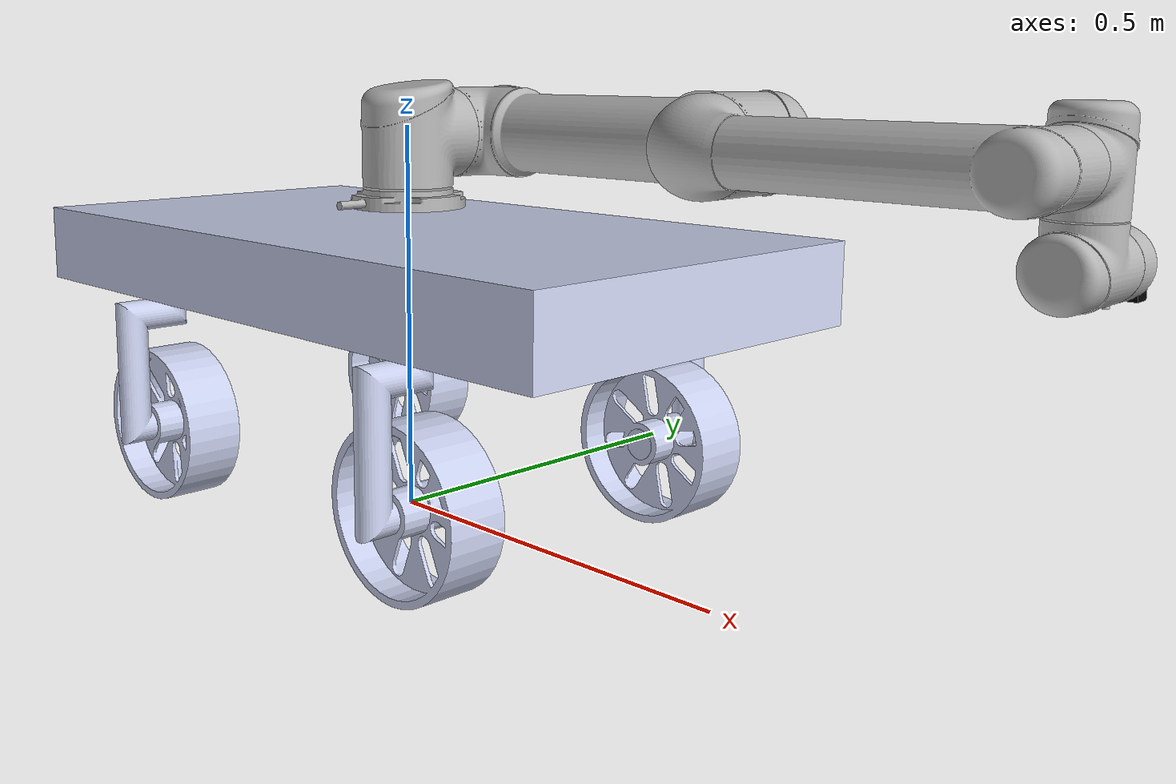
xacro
<?xml version="1.0"?>
<!-- Name your robot here -->
<robot name ="batbat" xmlns:xacro="http://wiki.ros.org/xacro">

<!-- Include your urdf files here -->
	<!-- Include Robot's urdf filepath -->
	<!-- Include Lidar's urdf filepath -->
	<xacro:include filename="$(find ur5_mobile_robot)/urdf/batbat.urdf"/>
	<xacro:include filename="$(find ur5_mobile_robot)/urdf/ur5_original_bat.urdf"/>

<!-- Add your gazebo sensors here -->

<!--  Gazebo plugin for control here is already added for you -->
	<gazebo>
		<plugin name="gazebo_ros_control" filename="libgazebo_ros_control.so">
			<robotNamespace>/batbat</robotNamespace>
			<robotSimType>gazebo_ros_control/DefaultRobotHWSim</robotSimType>
			<legacyModeNS>true</legacyModeNS>
		</plugin>
	</gazebo>

<!-- Create a joint between your robot and sensor -->
  <joint name="bat_bat_to_base" type="fixed">
    <origin rpy="0 0 0" xyz="0 0 0.400"/>
    <parent link="bat"/>
    <child link="base_link"/>
    <axis xyz="0 0 0"/>
  </joint>

</robot>

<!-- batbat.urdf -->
<robot
  name="batbat">
<link name="dummy_link">
  <pose>0 0 0 0 0 0</pose>
  </link>
  <joint name="dummy_joint" type="fixed">
    <parent
  	  link="dummy_link" />
    <child
      link="bat" />
    <origin
      xyz="0 0 0"
      rpy="0 0 0" />
    <axis
      xyz="0 0 0" />
  </joint>
  <link
    name="bat">
    <inertial>
      <origin
        xyz="-0.00486599634331379 -6.69841468503707E-18 0.324027623484238"
        rpy="0 0 0" />
      <mass
        value="50.7232439388311" />
      <inertia
        ixx="1.09055826124951"
        ixy="-3.35269528592248E-09"
        ixz="-3.3812326891182E-18"
        iyy="3.83396354011628"
        iyz="6.15284732885524E-18"
        izz="4.83272431412613" />
    </inertial>
    <visual>
      <origin
        xyz="0 0 0"
        rpy="0 0 0" />
      <geometry>
        <mesh
          filename="package://batbat/meshes/bat.STL" />
      </geometry>
      <material
        name="">
        <color
          rgba="0.792156862745098 0.819607843137255 0.933333333333333 1" />
      </material>
    </visual>
    <collision>
      <origin
        xyz="0 0 0"
        rpy="0 0 0" />
      <geometry>
        <mesh
          filename="package://batbat/meshes/bat.STL" />
      </geometry>
    </collision>
  </link>
  <link
    name="left_rear_wheel">
    <inertial>
      <origin
        xyz="1.66533453693773E-16 -8.32667268468867E-17 -0.0385"
        rpy="0 0 0" />
      <mass
        value="0.573286729576328" />
      <inertia
        ixx="0.00239463603464469"
        ixy="-7.27413290431382E-19"
        ixz="5.45949532263419E-19"
        iyy="0.0023946360346447"
        iyz="-2.06639055511541E-19"
        izz="0.00432457445366218" />
    </inertial>
    <visual>
      <origin
        xyz="0 0 0"
        rpy="0 0 0" />
      <geometry>
        <mesh
          filename="package://batbat/meshes/left_rear_wheel.STL" />
      </geometry>
      <material
        name="">
        <color
          rgba="0.792156862745098 0.819607843137255 0.933333333333333 1" />
      </material>
    </visual>
    <collision>
      <origin
        xyz="0 0 0"
        rpy="0 0 0" />
      <geometry>
        <mesh
          filename="package://batbat/meshes/left_rear_wheel.STL" />
      </geometry>
    </collision>
  </link>
  <joint
    name="left_rear_wheel_joint"
    type="continuous">
    <origin
      xyz="-0.254 0.166 0.1015"
      rpy="1.5707963267949 0 0" />
    <parent
      link="bat" />
    <child
      link="left_rear_wheel" />
    <axis
      xyz="0 0 -1" />
  </joint>
  <link
    name="right_rear_wheel">
    <inertial>
      <origin
        xyz="0 2.77555756156289E-17 -0.0385"
        rpy="0 0 0" />
      <mass
        value="0.573286729576328" />
      <inertia
        ixx="0.0023946360346447"
        ixy="1.64596017200982E-20"
        ixz="-2.10404479653222E-19"
        iyy="0.00239463603464469"
        iyz="4.09320571474671E-21"
        izz="0.00432457445366218" />
    </inertial>
    <visual>
      <origin
        xyz="0 0 0"
        rpy="0 0 0" />
      <geometry>
        <mesh
          filename="package://batbat/meshes/right_rear_wheel.STL" />
      </geometry>
      <material
        name="">
        <color
          rgba="0.792156862745098 0.819607843137255 0.933333333333333 1" />
      </material>
    </visual>
    <collision>
      <origin
        xyz="0 0 0"
        rpy="0 0 0" />
      <geometry>
        <mesh
          filename="package://batbat/meshes/right_rear_wheel.STL" />
      </geometry>
    </collision>
  </link>
  <joint
    name="right_rear_wheel_joint"
    type="continuous">
    <origin
      xyz="-0.254 -0.166 0.1015"
      rpy="-1.5707963267949 0 0" />
    <parent
      link="bat" />
    <child
      link="right_rear_wheel" />
    <axis
      xyz="0 0 1" />
  </joint>
  <link
    name="left_front_wheel">
    <inertial>
      <origin
        xyz="-5.68062037409334E-08 -0.0303204178096878 0.135651534929482"
        rpy="0 0 0" />
      <mass
        value="0.476285675559157" />
      <inertia
        ixx="0.00308338361390996"
        ixy="1.67634769313375E-09"
        ixz="-1.85092014262691E-09"
        iyy="0.00267628266798719"
        iyz="0.000153347484245119"
        izz="0.000502340348058678" />
    </inertial>
    <visual>
      <origin
        xyz="0 0 0"
        rpy="0 0 0" />
      <geometry>
        <mesh
          filename="package://batbat/meshes/left_front_wheel.STL" />
      </geometry>
      <material
        name="">
        <color
          rgba="0.792156862745098 0.819607843137255 0.933333333333333 1" />
      </material>
    </visual>
    <collision>
      <origin
        xyz="0 0 0"
        rpy="0 0 0" />
      <geometry>
        <mesh
          filename="package://batbat/meshes/left_front_wheel.STL" />
      </geometry>
    </collision>
  </link>
  <joint
    name="left_front_wheel_joint"
    type="revolute">
    <origin
      xyz="0.254 0.204 0.3265"
      rpy="3.14159265358979 0 0" />
    <parent
      link="bat" />
    <child
      link="left_front_wheel" />
    <axis
      xyz="0 0 1" />
    <limit
      lower="-3"
      upper="3"
      effort="10"
      velocity="100" />
  </joint>
  <link
    name="left_roll">
    <inertial>
      <origin
        xyz="-5.55111512312578E-17 0 -0.0385"
        rpy="0 0 0" />
      <mass
        value="0.573286729576329" />
      <inertia
        ixx="0.0023946360346447"
        ixy="2.38767751764967E-20"
        ixz="5.17032334026986E-19"
        iyy="0.0023946360346447"
        iyz="-2.92576549499483E-19"
        izz="0.00432457445366219" />
    </inertial>
    <visual>
      <origin
        xyz="0 0 0"
        rpy="0 0 0" />
      <geometry>
        <mesh
          filename="package://batbat/meshes/left_roll.STL" />
      </geometry>
      <material
        name="">
        <color
          rgba="0.792156862745098 0.819607843137255 0.933333333333333 1" />
      </material>
    </visual>
    <collision>
      <origin
        xyz="0 0 0"
        rpy="0 0 0" />
      <geometry>
        <mesh
          filename="package://batbat/meshes/left_roll.STL" />
      </geometry>
    </collision>
  </link>
  <joint
    name="left_roll_joint"
    type="continuous">
    <origin
      xyz="0 0.038 0.225"
      rpy="-1.5707963267949 0 0" />
    <parent
      link="left_front_wheel" />
    <child
      link="left_roll" />
    <axis
      xyz="0 0 -1" />
  </joint>
  <link
    name="right_front_wheel">
    <inertial>
      <origin
        xyz="5.68062039074668E-08 0.0303204178096884 0.135651534929482"
        rpy="0 0 0" />
      <mass
        value="0.476285675559157" />
      <inertia
        ixx="0.00308338361390996"
        ixy="1.67634769328428E-09"
        ixz="1.85092014321466E-09"
        iyy="0.0026762826679872"
        iyz="-0.000153347484245121"
        izz="0.000502340348058678" />
    </inertial>
    <visual>
      <origin
        xyz="0 0 0"
        rpy="0 0 0" />
      <geometry>
        <mesh
          filename="package://batbat/meshes/right_front_wheel.STL" />
      </geometry>
      <material
        name="">
        <color
          rgba="0.792156862745098 0.819607843137255 0.933333333333333 1" />
      </material>
    </visual>
    <collision>
      <origin
        xyz="0 0 0"
        rpy="0 0 0" />
      <geometry>
        <mesh
          filename="package://batbat/meshes/right_front_wheel.STL" />
      </geometry>
    </collision>
  </link>
  <joint
    name="right_front_wheel_joint"
    type="revolute">
    <origin
      xyz="0.254 -0.203999999999999 0.3265"
      rpy="3.14159265358979 0 0" />
    <parent
      link="bat" />
    <child
      link="right_front_wheel" />
    <axis
      xyz="0 0 1" />
    <limit
      lower="-3"
      upper="3"
      effort="10"
      velocity="100" />
  </joint>
  <link
    name="right_roll">
    <inertial>
      <origin
        xyz="0 -5.55111512312578E-17 -0.0384999999999997"
        rpy="0 0 0" />
      <mass
        value="0.573286729576328" />
      <inertia
        ixx="0.0023946360346447"
        ixy="1.07472378557313E-18"
        ixz="2.45111503531771E-19"
        iyy="0.00239463603464469"
        iyz="5.1029475068558E-20"
        izz="0.00432457445366218" />
    </inertial>
    <visual>
      <origin
        xyz="0 0 0"
        rpy="0 0 0" />
      <geometry>
        <mesh
          filename="package://batbat/meshes/right_roll.STL" />
      </geometry>
      <material
        name="">
        <color
          rgba="0.792156862745098 0.819607843137255 0.933333333333333 1" />
      </material>
    </visual>
    <collision>
      <origin
        xyz="0 0 0"
        rpy="0 0 0" />
      <geometry>
        <mesh
          filename="package://batbat/meshes/right_roll.STL" />
      </geometry>
    </collision>
  </link>
  <joint
    name="right_roll_joint"
    type="continuous">
    <origin
      xyz="0 -0.0379999999999993 0.225"
      rpy="-1.5707963267949 0 3.14159265358979" />
    <parent
      link="right_front_wheel" />
    <child
      link="right_roll" />
    <axis
      xyz="0 0 -1" />
  </joint>
<transmission name="rear_motor_left">
    <type>transmission_interface/SimpleTransmission</type>
    <joint name="left_rear_wheel_joint">
      <hardwareInterface>hardware_interface/VelocityJointInterface</hardwareInterface>
    </joint>
    <actuator name="rear_motor_left">
      <mechanicalReduction>100</mechanicalReduction>
      <hardwareInterface>hardware_interface/VelocityJointInterface</hardwareInterface>
    </actuator>
  </transmission>
  <transmission name="rear_motor_right">
    <type>transmission_interface/SimpleTransmission</type>
    <joint name="right_rear_wheel_joint">
      <hardwareInterface>hardware_interface/VelocityJointInterface</hardwareInterface>
    </joint>
    <actuator name="rear_motor_right">
      <mechanicalReduction>100</mechanicalReduction>
      <hardwareInterface>hardware_interface/VelocityJointInterface</hardwareInterface>
    </actuator>
  </transmission>
  <transmission name="front_motor_right">
    <type>transmission_interface/SimpleTransmission</type>
    <joint name="right_front_wheel_joint">
      <hardwareInterface>hardware_interface/EffortJointInterface</hardwareInterface>
    </joint>
    <actuator name="front_motor_right">
      <mechanicalReduction>50</mechanicalReduction>
      <hardwareInterface>hardware_interface/EffortJointInterface</hardwareInterface>
    </actuator>
  </transmission>
  <transmission name="front_motor_left">
    <type>transmission_interface/SimpleTransmission</type>
    <joint name="left_front_wheel_joint">
      <hardwareInterface>hardware_interface/EffortJointInterface</hardwareInterface>
    </joint>
    <actuator name="front_motor_left">
      <mechanicalReduction>50</mechanicalReduction>
      <hardwareInterface>hardware_interface/EffortJointInterface</hardwareInterface>
    </actuator>
  </transmission>
</robot>

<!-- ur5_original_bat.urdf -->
<robot name="ur5">
  <gazebo>
    <plugin name="gazebo_ros_control" filename="libgazebo_ros_control.so">
    </plugin>
  </gazebo>
  <link name="base_link">
    <visual>
      <geometry>
        <mesh filename="package://ur_description/meshes/ur5/visual/base.dae"/>
      </geometry>
      <material name="LightGrey">
        <color rgba="0.7 0.7 0.7 1.0"/>
      </material>
    </visual>
    <collision>
      <geometry>
        <mesh filename="package://ur_description/meshes/ur5/collision/base.stl"/>
      </geometry>
    </collision>
    <inertial>
      <mass value="4.0"/>
      <origin rpy="0 0 0" xyz="0.0 0.0 0.0"/>
      <inertia ixx="0.00443333156" ixy="0.0" ixz="0.0" iyy="0.00443333156" iyz="0.0" izz="0.0072"/>
    </inertial>
  </link>
  <joint name="shoulder_sweep_joint" type="revolute">
    <parent link="base_link"/>
    <child link="shoulder_link"/>
    <origin rpy="0.0 0.0 0.0" xyz="0.0 0.0 0.089159"/>
    <axis xyz="0 0 1"/>
    <limit effort="150.0" lower="-3.14159265" upper="3.14159265" velocity="3.15"/>
    <dynamics damping="0.0" friction="0.0"/>
  </joint>
  <link name="shoulder_link">
    <visual>
      <geometry>
        <mesh filename="package://ur_description/meshes/ur5/visual/shoulder.dae"/>
      </geometry>
      <material name="LightGrey">
        <color rgba="0.7 0.7 0.7 1.0"/>
      </material>
    </visual>
    <collision>
      <geometry>
        <mesh filename="package://ur_description/meshes/ur5/collision/shoulder.stl"/>
      </geometry>
    </collision>
    <inertial>
      <mass value="3.7"/>
      <origin rpy="0 0 0" xyz="0.0 0.0 0.0"/>
      <inertia ixx="0.010267495893" ixy="0.0" ixz="0.0" iyy="0.010267495893" iyz="0.0" izz="0.00666"/>
    </inertial>
  </link>
  <joint name="shoulder_lift_joint" type="revolute">
    <parent link="shoulder_link"/>
    <child link="upper_arm_link"/>
    <origin rpy="0.0 1.570796325 0.0" xyz="0.0 0.13585 0.0"/>
    <axis xyz="0 1 0"/>
    <limit effort="150.0" lower="-3.14159265" upper="3.14159265" velocity="3.15"/>
    <dynamics damping="0.0" friction="0.0"/>
  </joint>
  <link name="upper_arm_link">
    <visual>
      <geometry>
        <mesh filename="package://ur_description/meshes/ur5/visual/upperarm.dae"/>
      </geometry>
      <material name="LightGrey">
        <color rgba="0.7 0.7 0.7 1.0"/>
      </material>
    </visual>
    <collision>
      <geometry>
        <mesh filename="package://ur_description/meshes/ur5/collision/upperarm.stl"/>
      </geometry>
    </collision>
    <inertial>
      <mass value="8.393"/>
      <origin rpy="0 0 0" xyz="0.0 0.0 0.28"/>
      <inertia ixx="0.22689067591" ixy="0.0" ixz="0.0" iyy="0.22689067591" iyz="0.0" izz="0.0151074"/>
    </inertial>
  </link>
  <joint name="elbow_joint" type="revolute">
    <parent link="upper_arm_link"/>
    <child link="forearm_link"/>
    <origin rpy="0.0 0.0 0.0" xyz="0.0 -0.1197 0.425"/>
    <axis xyz="0 1 0"/>
    <limit effort="150.0" lower="-3.14159265" upper="3.14159265" velocity="3.15"/>
    <dynamics damping="0.0" friction="0.0"/>
  </joint>
  <link name="forearm_link">
    <visual>
      <geometry>
        <mesh filename="package://ur_description/meshes/ur5/visual/forearm.dae"/>
      </geometry>
      <material name="LightGrey">
        <color rgba="0.7 0.7 0.7 1.0"/>
      </material>
    </visual>
    <collision>
      <geometry>
        <mesh filename="package://ur_description/meshes/ur5/collision/forearm.stl"/>
      </geometry>
    </collision>
    <inertial>
      <mass value="2.275"/>
      <origin rpy="0 0 0" xyz="0.0 0.0 0.25"/>
      <inertia ixx="0.049443313556" ixy="0.0" ixz="0.0" iyy="0.049443313556" iyz="0.0" izz="0.004095"/>
    </inertial>
  </link>
  <joint name="wrist_pitch_joint" type="revolute">
    <parent link="forearm_link"/>
    <child link="wrist_1_link"/>
    <origin rpy="0.0 1.570796325 0.0" xyz="0.0 0.0 0.39225"/>
    <axis xyz="0 1 0"/>
    <limit effort="28.0" lower="-3.14159265" upper="3.14159265" velocity="3.2"/>
    <dynamics damping="0.0" friction="0.0"/>
  </joint>
  <link name="wrist_1_link">
    <visual>
      <geometry>
        <mesh filename="package://ur_description/meshes/ur5/visual/wrist1.dae"/>
      </geometry>
      <material name="LightGrey">
        <color rgba="0.7 0.7 0.7 1.0"/>
      </material>
    </visual>
    <collision>
      <geometry>
        <mesh filename="package://ur_description/meshes/ur5/collision/wrist1.stl"/>
      </geometry>
    </collision>
    <inertial>
      <mass value="1.219"/>
      <origin rpy="0 0 0" xyz="0.0 0.0 0.0"/>
      <inertia ixx="0.111172755531" ixy="0.0" ixz="0.0" iyy="0.111172755531" iyz="0.0" izz="0.21942"/>
    </inertial>
  </link>
  <joint name="wrist_roll_joint" type="revolute">
    <parent link="wrist_1_link"/>
    <child link="wrist_2_link"/>
    <origin rpy="0.0 0.0 0.0" xyz="0.0 0.093 0.0"/>
    <axis xyz="0 0 1"/>
    <limit effort="28.0" lower="-3.14159265" upper="3.14159265" velocity="3.2"/>
    <dynamics damping="0.0" friction="0.0"/>
  </joint>
  <link name="wrist_2_link">
    <visual>
      <geometry>
        <mesh filename="package://ur_description/meshes/ur5/visual/wrist2.dae"/>
      </geometry>
      <material name="LightGrey">
        <color rgba="0.7 0.7 0.7 1.0"/>
      </material>
    </visual>
    <collision>
      <geometry>
        <mesh filename="package://ur_description/meshes/ur5/collision/wrist2.stl"/>
      </geometry>
    </collision>
    <inertial>
      <mass value="1.219"/>
      <origin rpy="0 0 0" xyz="0.0 0.0 0.0"/>
      <inertia ixx="0.111172755531" ixy="0.0" ixz="0.0" iyy="0.111172755531" iyz="0.0" izz="0.21942"/>
    </inertial>
  </link>
  <joint name="wrist_yaw_joint" type="revolute">
    <parent link="wrist_2_link"/>
    <child link="wrist_3_link"/>
    <origin rpy="0.0 0.0 0.0" xyz="0.0 0.0 0.09465"/>
    <axis xyz="0 1 0"/>
    <limit effort="28.0" lower="-3.14159265" upper="3.14159265" velocity="3.2"/>
    <dynamics damping="0.0" friction="0.0"/>
  </joint>
  <link name="wrist_3_link">
    <visual>
      <geometry>
        <mesh filename="package://ur_description/meshes/ur5/visual/wrist3.dae"/>
      </geometry>
      <material name="LightGrey">
        <color rgba="0.7 0.7 0.7 1.0"/>
      </material>
    </visual>
    <collision>
      <geometry>
        <mesh filename="package://ur_description/meshes/ur5/collision/wrist3.stl"/>
      </geometry>
    </collision>
    <inertial>
      <mass value="0.1879"/>
      <origin rpy="0 0 0" xyz="0.0 0.0 0.0"/>
      <inertia ixx="0.0171364731454" ixy="0.0" ixz="0.0" iyy="0.0171364731454" iyz="0.0" izz="0.033822"/>
    </inertial>
  </link>
  <joint name="ee_fixed_joint" type="fixed">
    <parent link="wrist_3_link"/>
    <child link="ee_link"/>
    <origin rpy="0.0 0.0 1.570796325" xyz="0.0 0.0823 0.0"/>
  </joint>
  <link name="ee_link">
    <collision>
      <geometry>
        <box size="0.01 0.01 0.01"/>
      </geometry>
      <origin rpy="0 0 0" xyz="-0.01 0 0"/>
    </collision>
  </link>
  <transmission name="shoulder_pan_trans">
    <type>transmission_interface/SimpleTransmission</type>
    <joint name="shoulder_sweep_joint">
      <hardwareInterface>hardware_interface/EffortJointInterface</hardwareInterface>
    </joint>
    <actuator name="shoulder_pan_motor">
      <mechanicalReduction>1</mechanicalReduction>
    </actuator>
  </transmission>
  <transmission name="shoulder_lift_trans">
    <type>transmission_interface/SimpleTransmission</type>
    <joint name="shoulder_lift_joint">
      <hardwareInterface>hardware_interface/EffortJointInterface</hardwareInterface>
    </joint>
    <actuator name="shoulder_lift_motor">
      <mechanicalReduction>1</mechanicalReduction>
    </actuator>
  </transmission>
  <transmission name="elbow_trans">
    <type>transmission_interface/SimpleTransmission</type>
    <joint name="elbow_joint">
      <hardwareInterface>hardware_interface/EffortJointInterface</hardwareInterface>
    </joint>
    <actuator name="elbow_motor">
      <mechanicalReduction>1</mechanicalReduction>
    </actuator>
  </transmission>
  <transmission name="wrist_1_trans">
    <type>transmission_interface/SimpleTransmission</type>
    <joint name="wrist_pitch_joint">
      <hardwareInterface>hardware_interface/EffortJointInterface</hardwareInterface>
    </joint>
    <actuator name="wrist_1_motor">
      <mechanicalReduction>1</mechanicalReduction>
    </actuator>
  </transmission>
  <transmission name="wrist_2_trans">
    <type>transmission_interface/SimpleTransmission</type>
    <joint name="wrist_roll_joint">
      <hardwareInterface>hardware_interface/EffortJointInterface</hardwareInterface>
    </joint>
    <actuator name="wrist_2_motor">
      <mechanicalReduction>1</mechanicalReduction>
    </actuator>
  </transmission>
  <transmission name="wrist_3_trans">
    <type>transmission_interface/SimpleTransmission</type>
    <joint name="wrist_yaw_joint">
      <hardwareInterface>hardware_interface/EffortJointInterface</hardwareInterface>
    </joint>
    <actuator name="wrist_3_motor">
      <mechanicalReduction>1</mechanicalReduction>
    </actuator>
  </transmission>
  <!-- define the ur5's position and orientation in the world coordinate system -->

  <!--gripper-->
  <link name="vacuum_effector">
      <gravity>0</gravity>
      <visual>
        <origin rpy="0 0 0" xyz="0 0 0"/>
        <geometry>
          <box size="0.05 0.02 0.05"/>
        </geometry>
        <material name="transparent">
          <color rgba="0 0 0 0"/>
        </material>
      </visual>
      <inertial>
        <origin rpy="0 0 0" xyz="0.000000 0.000000 0.000000"/>
        <mass value="0.0001"/>
        <inertia ixx="1e-08" ixy="0" ixz="0" iyy="1e-08" iyz="0" izz="1e-08"/>
      </inertial>
    </link>
    <joint name="left_end_joint" type="revolute">
      <parent link="wrist_3_link" />
      <child link="vacuum_effector" />
      <origin rpy="0 0 0" xyz="0 0.08 0.01" />
      <limit effort="30" velocity="1.0" lower="0" upper="0" />
    </joint>
    <gazebo>
      <plugin name="gazebo_ros_vacuum_gripper" filename="libgazebo_ros_vacuum_gripper.so">
        <robotNamespace>/robot/vacuum_gripper</robotNamespace>
        <bodyName>vacuum_effector</bodyName>
        <topicName>grasping</topicName>
      </plugin>
    </gazebo>
</robot>
